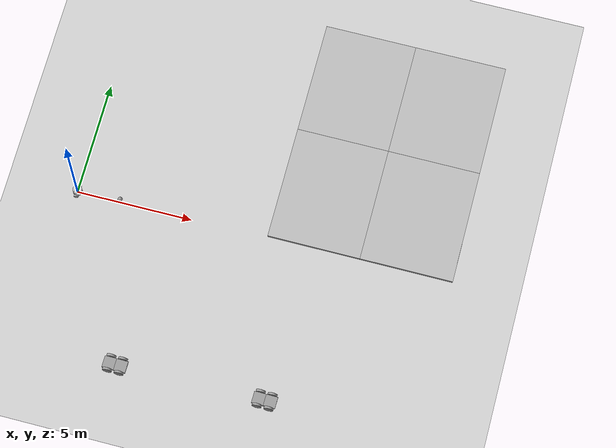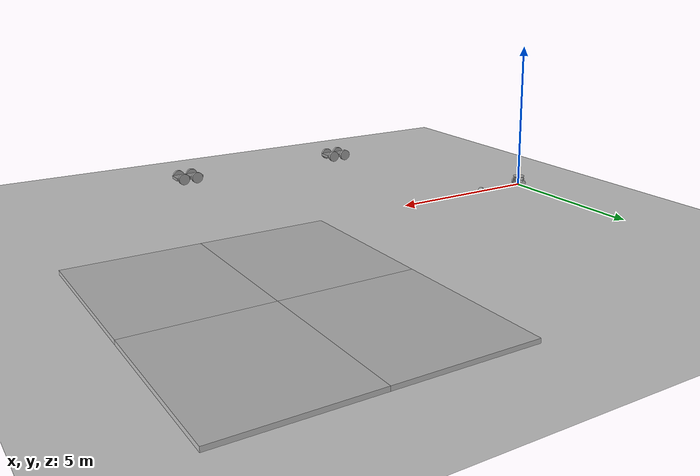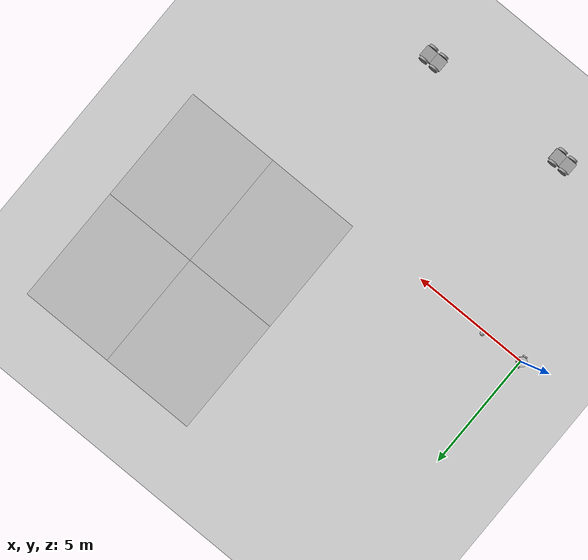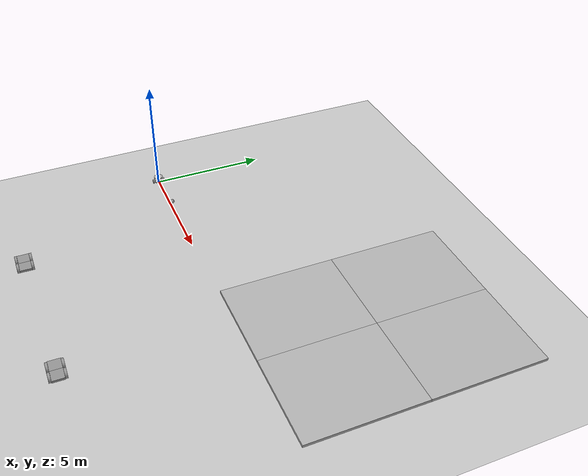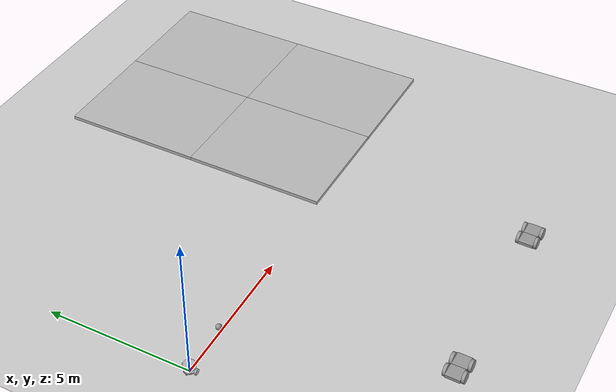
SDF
<sdf version="1.6">
 <world name="default">
  <model name="ground_plane">
   <static>1</static>
   <link name="link">
    <collision name="collision">
     <geometry><plane><normal>0 0 1</normal><size>100 100</size></plane></geometry>
     <surface><friction><ode><mu>100</mu><mu2>50</mu2></ode></friction></surface>
    </collision>
    <visual name="visual">
     <cast_shadows>0</cast_shadows>
     <geometry><plane><normal>0 0 1</normal><size>100 100</size></plane></geometry>
     <material>
      <script><uri>file://media/materials/scripts/gazebo.material</uri><name>Gazebo/Grey</name></script>
     </material>
    </visual>
   </link>
  </model>
  <model name="mud_box">
   <static>1</static>
   <link name="link">
    <collision name="collision"><geometry><box><size>8 10 0.2</size></box></geometry></collision>
    <visual name="visual_1">
     <pose>-2 2.5 0 0 -0 0</pose>
     <cast_shadows>0</cast_shadows>
     <geometry><box><size>4 5 0.2</size></box></geometry>
     <material>
      <script>
       <uri>model://mud_box/materials/scripts</uri>
       <uri>model://mud_box/materials/textures</uri>
       <name>vrc/mud</name>
      </script>
     </material>
    </visual>
    <visual name="visual_2">
     <pose>2 2.5 0 0 -0 0</pose>
     <cast_shadows>0</cast_shadows>
     <geometry><box><size>4 5 0.2</size></box></geometry>
     <material>
      <script>
       <uri>model://mud_box/materials/scripts</uri>
       <uri>model://mud_box/materials/textures</uri>
       <name>vrc/mud</name>
      </script>
     </material>
    </visual>
    <visual name="visual_3">
     <pose>2 -2.5 0 0 -0 0</pose>
     <cast_shadows>0</cast_shadows>
     <geometry><box><size>4 5 0.2</size></box></geometry>
     <material>
      <script>
       <uri>model://mud_box/materials/scripts</uri>
       <uri>model://mud_box/materials/textures</uri>
       <name>vrc/mud</name>
      </script>
     </material>
    </visual>
    <visual name="visual_4">
     <pose>-2 -2.5 0 0 -0 0</pose>
     <cast_shadows>0</cast_shadows>
     <geometry><box><size>4 5 0.2</size></box></geometry>
     <material>
      <script>
       <uri>model://mud_box/materials/scripts</uri>
       <uri>model://mud_box/materials/textures</uri>
       <name>vrc/mud</name>
      </script>
     </material>
    </visual>
   </link>
   <pose>12.2965 5.12025 0 0 -0 0</pose>
  </model>
  <model name="lil_robot_clone_0">
   <link name="link_1">
    <inertial>
     <mass>1</mass>
     <inertia>
      <ixx>0.166667</ixx>
      <ixy>0</ixy>
      <ixz>0</ixz>
      <iyy>0.166667</iyy>
      <iyz>0</iyz>
      <izz>0.166667</izz>
     </inertia>
    </inertial>
    <pose>-0.159267 -0.015 -0.014999 0 -0 0</pose>
    <visual name="visual">
     <geometry><box><size>0.5 0.5 0.1</size></box></geometry>
     <material>
      <lighting>1</lighting>
      <script><uri>file://media/materials/scripts/gazebo.material</uri><name>Gazebo/Grey</name></script>
      <shader type="vertex"><normal_map>__default__</normal_map></shader>
      <ambient>0.3 0.3 0.3 1</ambient>
      <diffuse>0.7 0.7 0.7 1</diffuse>
      <specular>0.01 0.01 0.01 1</specular>
      <emissive>0 0 0 1</emissive>
     </material>
    </visual>
    <collision name="collision">
     <geometry><box><size>0.5 0.5 0.1</size></box></geometry>
     <surface>
      <friction>
       <ode><mu>1</mu><mu2>1</mu2><fdir1>0 0 0</fdir1><slip1>0</slip1><slip2>0</slip2></ode>
       <torsional>
        <coefficient>1</coefficient>
        <patch_radius>0</patch_radius>
        <surface_radius>0</surface_radius>
        <use_patch_radius>1</use_patch_radius>
        <ode><slip>0</slip></ode>
       </torsional>
      </friction>
      <bounce><restitution_coefficient>0</restitution_coefficient><threshold>1e+06</threshold></bounce>
      <contact>
       <collide_without_contact>0</collide_without_contact>
       <collide_without_contact_bitmask>1</collide_without_contact_bitmask>
       <collide_bitmask>1</collide_bitmask>
       <ode>
        <soft_cfm>0</soft_cfm>
        <soft_erp>0.2</soft_erp>
        <kp>1e+13</kp>
        <kd>1</kd>
        <max_vel>0.01</max_vel>
        <min_depth>0</min_depth>
       </ode>
       <bullet>
        <split_impulse>1</split_impulse>
        <split_impulse_penetration_threshold>-0.01</split_impulse_penetration_threshold>
        <soft_cfm>0</soft_cfm>
        <soft_erp>0.2</soft_erp>
        <kp>1e+13</kp>
        <kd>1</kd>
       </bullet>
      </contact>
     </surface>
    </collision>
   </link>
   <link name="link_1_clone">
    <inertial>
     <mass>1</mass>
     <inertia>
      <ixx>0.166667</ixx>
      <ixy>0</ixy>
      <ixz>0</ixz>
      <iyy>0.166667</iyy>
      <iyz>0</iyz>
      <izz>0.166667</izz>
     </inertia>
    </inertial>
    <pose>0.340733 -0.015 -0.014999 0 -0 0</pose>
    <visual name="visual">
     <geometry><box><size>0.5 0.5 0.1</size></box></geometry>
     <material>
      <lighting>1</lighting>
      <script><uri>file://media/materials/scripts/gazebo.material</uri><name>Gazebo/Grey</name></script>
      <shader type="vertex"><normal_map>__default__</normal_map></shader>
      <ambient>0.3 0.3 0.3 1</ambient>
      <diffuse>0.7 0.7 0.7 1</diffuse>
      <specular>0.01 0.01 0.01 1</specular>
      <emissive>0 0 0 1</emissive>
     </material>
    </visual>
    <collision name="collision">
     <geometry><box><size>0.5 0.5 0.1</size></box></geometry>
     <surface>
      <friction>
       <ode><mu>1</mu><mu2>1</mu2><fdir1>0 0 0</fdir1><slip1>0</slip1><slip2>0</slip2></ode>
       <torsional>
        <coefficient>1</coefficient>
        <patch_radius>0</patch_radius>
        <surface_radius>0</surface_radius>
        <use_patch_radius>1</use_patch_radius>
        <ode><slip>0</slip></ode>
       </torsional>
      </friction>
      <bounce><restitution_coefficient>0</restitution_coefficient><threshold>1e+06</threshold></bounce>
      <contact>
       <collide_without_contact>0</collide_without_contact>
       <collide_without_contact_bitmask>1</collide_without_contact_bitmask>
       <collide_bitmask>1</collide_bitmask>
       <ode>
        <soft_cfm>0</soft_cfm>
        <soft_erp>0.2</soft_erp>
        <kp>1e+13</kp>
        <kd>1</kd>
        <max_vel>0.01</max_vel>
        <min_depth>0</min_depth>
       </ode>
       <bullet>
        <split_impulse>1</split_impulse>
        <split_impulse_penetration_threshold>-0.01</split_impulse_penetration_threshold>
        <soft_cfm>0</soft_cfm>
        <soft_erp>0.2</soft_erp>
        <kp>1e+13</kp>
        <kd>1</kd>
       </bullet>
      </contact>
     </surface>
    </collision>
   </link>
   <link name="link_2_clone">
    <inertial>
     <mass>1</mass>
     <inertia><ixx>0.145833</ixx><ixy>0</ixy><ixz>0</ixz><iyy>0.145833</iyy><iyz>0</iyz><izz>0.125</izz></inertia>
    </inertial>
    <pose>0.340733 0.285019 -0.014999 1.5707 -0 0</pose>
    <visual name="visual">
     <geometry><cylinder><radius>0.2</radius><length>0.1</length></cylinder></geometry>
     <material>
      <lighting>1</lighting>
      <script><uri>file://media/materials/scripts/gazebo.material</uri><name>Gazebo/Grey</name></script>
      <shader type="vertex"><normal_map>__default__</normal_map></shader>
      <ambient>0.3 0.3 0.3 1</ambient>
      <diffuse>0.7 0.7 0.7 1</diffuse>
      <specular>0.01 0.01 0.01 1</specular>
      <emissive>0 0 0 1</emissive>
     </material>
    </visual>
    <collision name="collision">
     <geometry><cylinder><radius>0.2</radius><length>0.1</length></cylinder></geometry>
     <surface>
      <friction>
       <ode><mu>1</mu><mu2>1</mu2><fdir1>0 0 0</fdir1><slip1>0</slip1><slip2>0</slip2></ode>
       <torsional>
        <coefficient>1</coefficient>
        <patch_radius>0</patch_radius>
        <surface_radius>0</surface_radius>
        <use_patch_radius>1</use_patch_radius>
        <ode><slip>0</slip></ode>
       </torsional>
      </friction>
      <bounce><restitution_coefficient>0</restitution_coefficient><threshold>1e+06</threshold></bounce>
      <contact>
       <collide_without_contact>0</collide_without_contact>
       <collide_without_contact_bitmask>1</collide_without_contact_bitmask>
       <collide_bitmask>1</collide_bitmask>
       <ode>
        <soft_cfm>0</soft_cfm>
        <soft_erp>0.2</soft_erp>
        <kp>1e+13</kp>
        <kd>1</kd>
        <max_vel>0.01</max_vel>
        <min_depth>0</min_depth>
       </ode>
       <bullet>
        <split_impulse>1</split_impulse>
        <split_impulse_penetration_threshold>-0.01</split_impulse_penetration_threshold>
        <soft_cfm>0</soft_cfm>
        <soft_erp>0.2</soft_erp>
        <kp>1e+13</kp>
        <kd>1</kd>
       </bullet>
      </contact>
     </surface>
    </collision>
   </link>
   <link name="link_2_clone_clone">
    <inertial>
     <mass>1</mass>
     <inertia><ixx>0.145833</ixx><ixy>0</ixy><ixz>0</ixz><iyy>0.145833</iyy><iyz>0</iyz><izz>0.125</izz></inertia>
    </inertial>
    <pose>0.340733 -0.315019 -0.014999 1.5707 -0 0</pose>
    <visual name="visual">
     <geometry><cylinder><radius>0.2</radius><length>0.1</length></cylinder></geometry>
     <material>
      <lighting>1</lighting>
      <script><uri>file://media/materials/scripts/gazebo.material</uri><name>Gazebo/Grey</name></script>
      <shader type="vertex"><normal_map>__default__</normal_map></shader>
      <ambient>0.3 0.3 0.3 1</ambient>
      <diffuse>0.7 0.7 0.7 1</diffuse>
      <specular>0.01 0.01 0.01 1</specular>
      <emissive>0 0 0 1</emissive>
     </material>
    </visual>
    <collision name="collision">
     <geometry><cylinder><radius>0.2</radius><length>0.1</length></cylinder></geometry>
     <surface>
      <friction>
       <ode><mu>1</mu><mu2>1</mu2><fdir1>0 0 0</fdir1><slip1>0</slip1><slip2>0</slip2></ode>
       <torsional>
        <coefficient>1</coefficient>
        <patch_radius>0</patch_radius>
        <surface_radius>0</surface_radius>
        <use_patch_radius>1</use_patch_radius>
        <ode><slip>0</slip></ode>
       </torsional>
      </friction>
      <bounce><restitution_coefficient>0</restitution_coefficient><threshold>1e+06</threshold></bounce>
      <contact>
       <collide_without_contact>0</collide_without_contact>
       <collide_without_contact_bitmask>1</collide_without_contact_bitmask>
       <collide_bitmask>1</collide_bitmask>
       <ode>
        <soft_cfm>0</soft_cfm>
        <soft_erp>0.2</soft_erp>
        <kp>1e+13</kp>
        <kd>1</kd>
        <max_vel>0.01</max_vel>
        <min_depth>0</min_depth>
       </ode>
       <bullet>
        <split_impulse>1</split_impulse>
        <split_impulse_penetration_threshold>-0.01</split_impulse_penetration_threshold>
        <soft_cfm>0</soft_cfm>
        <soft_erp>0.2</soft_erp>
        <kp>1e+13</kp>
        <kd>1</kd>
       </bullet>
      </contact>
     </surface>
    </collision>
   </link>
   <link name="link_2_clone_clone_0">
    <inertial>
     <mass>1</mass>
     <inertia><ixx>0.145833</ixx><ixy>0</ixy><ixz>0</ixz><iyy>0.145833</iyy><iyz>0</iyz><izz>0.125</izz></inertia>
    </inertial>
    <pose>-0.159267 0.285019 -0.014999 1.5707 -0 0</pose>
    <visual name="visual">
     <geometry><cylinder><radius>0.2</radius><length>0.1</length></cylinder></geometry>
     <material>
      <lighting>1</lighting>
      <script><uri>file://media/materials/scripts/gazebo.material</uri><name>Gazebo/Grey</name></script>
      <shader type="vertex"><normal_map>__default__</normal_map></shader>
      <ambient>0.3 0.3 0.3 1</ambient>
      <diffuse>0.7 0.7 0.7 1</diffuse>
      <specular>0.01 0.01 0.01 1</specular>
      <emissive>0 0 0 1</emissive>
     </material>
    </visual>
    <collision name="collision">
     <geometry><cylinder><radius>0.2</radius><length>0.1</length></cylinder></geometry>
     <surface>
      <friction>
       <ode><mu>1</mu><mu2>1</mu2><fdir1>0 0 0</fdir1><slip1>0</slip1><slip2>0</slip2></ode>
       <torsional>
        <coefficient>1</coefficient>
        <patch_radius>0</patch_radius>
        <surface_radius>0</surface_radius>
        <use_patch_radius>1</use_patch_radius>
        <ode><slip>0</slip></ode>
       </torsional>
      </friction>
      <bounce><restitution_coefficient>0</restitution_coefficient><threshold>1e+06</threshold></bounce>
      <contact>
       <collide_without_contact>0</collide_without_contact>
       <collide_without_contact_bitmask>1</collide_without_contact_bitmask>
       <collide_bitmask>1</collide_bitmask>
       <ode>
        <soft_cfm>0</soft_cfm>
        <soft_erp>0.2</soft_erp>
        <kp>1e+13</kp>
        <kd>1</kd>
        <max_vel>0.01</max_vel>
        <min_depth>0</min_depth>
       </ode>
       <bullet>
        <split_impulse>1</split_impulse>
        <split_impulse_penetration_threshold>-0.01</split_impulse_penetration_threshold>
        <soft_cfm>0</soft_cfm>
        <soft_erp>0.2</soft_erp>
        <kp>1e+13</kp>
        <kd>1</kd>
       </bullet>
      </contact>
     </surface>
    </collision>
   </link>
   <link name="link_2_clone_clone_1">
    <inertial>
     <mass>1</mass>
     <inertia><ixx>0.145833</ixx><ixy>0</ixy><ixz>0</ixz><iyy>0.145833</iyy><iyz>0</iyz><izz>0.125</izz></inertia>
    </inertial>
    <pose>-0.159267 -0.315019 -0.014999 1.5707 -0 0</pose>
    <visual name="visual">
     <geometry><cylinder><radius>0.2</radius><length>0.1</length></cylinder></geometry>
     <material>
      <lighting>1</lighting>
      <script><uri>file://media/materials/scripts/gazebo.material</uri><name>Gazebo/Grey</name></script>
      <shader type="vertex"><normal_map>__default__</normal_map></shader>
      <ambient>0.3 0.3 0.3 1</ambient>
      <diffuse>0.7 0.7 0.7 1</diffuse>
      <specular>0.01 0.01 0.01 1</specular>
      <emissive>0 0 0 1</emissive>
     </material>
    </visual>
    <collision name="collision">
     <geometry><cylinder><radius>0.2</radius><length>0.1</length></cylinder></geometry>
     <surface>
      <friction>
       <ode><mu>1</mu><mu2>1</mu2><fdir1>0 0 0</fdir1><slip1>0</slip1><slip2>0</slip2></ode>
       <torsional>
        <coefficient>1</coefficient>
        <patch_radius>0</patch_radius>
        <surface_radius>0</surface_radius>
        <use_patch_radius>1</use_patch_radius>
        <ode><slip>0</slip></ode>
       </torsional>
      </friction>
      <bounce><restitution_coefficient>0</restitution_coefficient><threshold>1e+06</threshold></bounce>
      <contact>
       <collide_without_contact>0</collide_without_contact>
       <collide_without_contact_bitmask>1</collide_without_contact_bitmask>
       <collide_bitmask>1</collide_bitmask>
       <ode>
        <soft_cfm>0</soft_cfm>
        <soft_erp>0.2</soft_erp>
        <kp>1e+13</kp>
        <kd>1</kd>
        <max_vel>0.01</max_vel>
        <min_depth>0</min_depth>
       </ode>
       <bullet>
        <split_impulse>1</split_impulse>
        <split_impulse_penetration_threshold>-0.01</split_impulse_penetration_threshold>
        <soft_cfm>0</soft_cfm>
        <soft_erp>0.2</soft_erp>
        <kp>1e+13</kp>
        <kd>1</kd>
       </bullet>
      </contact>
     </surface>
    </collision>
   </link>
   <joint name="link_1_JOINT_1" type="fixed">
    <parent>link_1</parent>
    <child>link_1_clone</child>
    <physics>
     <ode><limit><cfm>0</cfm><erp>0.2</erp></limit><suspension><cfm>0</cfm><erp>0.2</erp></suspension></ode>
    </physics>
   </joint>
   <joint name="link_1_JOINT_3" type="revolute">
    <parent>link_1</parent>
    <child>link_2_clone_clone_0</child>
    <axis>
     <xyz>0 0 1</xyz>
     <use_parent_model_frame>0</use_parent_model_frame>
     <limit>
      <lower>-1.79769e+308</lower>
      <upper>1.79769e+308</upper>
      <effort>-1</effort>
      <velocity>-1</velocity>
     </limit>
     <dynamics>
      <spring_reference>0</spring_reference>
      <spring_stiffness>0</spring_stiffness>
      <damping>0</damping>
     </dynamics>
    </axis>
    <physics>
     <ode><limit><cfm>0</cfm><erp>0.2</erp></limit><suspension><cfm>0</cfm><erp>0.2</erp></suspension></ode>
    </physics>
   </joint>
   <joint name="link_1_JOINT_4" type="revolute">
    <parent>link_1</parent>
    <child>link_2_clone_clone_1</child>
    <axis>
     <xyz>0 0 1</xyz>
     <use_parent_model_frame>0</use_parent_model_frame>
     <limit>
      <lower>-1.79769e+308</lower>
      <upper>1.79769e+308</upper>
      <effort>-1</effort>
      <velocity>-1</velocity>
     </limit>
     <dynamics>
      <spring_reference>0</spring_reference>
      <spring_stiffness>0</spring_stiffness>
      <damping>0</damping>
     </dynamics>
    </axis>
    <physics>
     <ode><limit><cfm>0</cfm><erp>0.2</erp></limit><suspension><cfm>0</cfm><erp>0.2</erp></suspension></ode>
    </physics>
   </joint>
   <joint name="link_1_clone_JOINT_4" type="revolute">
    <parent>link_1_clone</parent>
    <child>link_2_clone</child>
    <axis>
     <xyz>0 0 1</xyz>
     <use_parent_model_frame>0</use_parent_model_frame>
     <limit>
      <lower>-1.79769e+308</lower>
      <upper>1.79769e+308</upper>
      <effort>-1</effort>
      <velocity>-1</velocity>
     </limit>
     <dynamics>
      <spring_reference>0</spring_reference>
      <spring_stiffness>0</spring_stiffness>
      <damping>0</damping>
      <friction>0</friction>
     </dynamics>
    </axis>
    <physics>
     <ode><limit><cfm>0</cfm><erp>0.2</erp></limit><suspension><cfm>0</cfm><erp>0.2</erp></suspension></ode>
    </physics>
   </joint>
   <joint name="link_1_clone_JOINT_5" type="revolute">
    <parent>link_1_clone</parent>
    <child>link_2_clone_clone</child>
    <axis>
     <xyz>0 0 1</xyz>
     <use_parent_model_frame>0</use_parent_model_frame>
     <limit>
      <lower>-1.79769e+308</lower>
      <upper>1.79769e+308</upper>
      <effort>-1</effort>
      <velocity>-1</velocity>
     </limit>
     <dynamics>
      <spring_reference>0</spring_reference>
      <spring_stiffness>0</spring_stiffness>
      <damping>0</damping>
      <friction>0</friction>
     </dynamics>
    </axis>
    <physics>
     <ode><limit><cfm>0</cfm><erp>0.2</erp></limit><suspension><cfm>0</cfm><erp>0.2</erp></suspension></ode>
    </physics>
   </joint>
   <static>0</static>
   <pose>3.60171 -6.91282 0.214995 -3e-06 7e-06 -0.017179</pose>
  </model>
  <model name="lil_robot_clone_1">
   <link name="link_1">
    <inertial>
     <mass>1</mass>
     <inertia>
      <ixx>0.166667</ixx>
      <ixy>0</ixy>
      <ixz>0</ixz>
      <iyy>0.166667</iyy>
      <iyz>0</iyz>
      <izz>0.166667</izz>
     </inertia>
    </inertial>
    <pose>-0.159267 -0.015 -0.014999 0 -0 0</pose>
    <visual name="visual">
     <geometry><box><size>0.5 0.5 0.1</size></box></geometry>
     <material>
      <lighting>1</lighting>
      <script><uri>file://media/materials/scripts/gazebo.material</uri><name>Gazebo/Grey</name></script>
      <shader type="vertex"><normal_map>__default__</normal_map></shader>
      <ambient>0.3 0.3 0.3 1</ambient>
      <diffuse>0.7 0.7 0.7 1</diffuse>
      <specular>0.01 0.01 0.01 1</specular>
      <emissive>0 0 0 1</emissive>
     </material>
    </visual>
    <collision name="collision">
     <geometry><box><size>0.5 0.5 0.1</size></box></geometry>
     <surface>
      <friction>
       <ode><mu>1</mu><mu2>1</mu2><fdir1>0 0 0</fdir1><slip1>0</slip1><slip2>0</slip2></ode>
       <torsional>
        <coefficient>1</coefficient>
        <patch_radius>0</patch_radius>
        <surface_radius>0</surface_radius>
        <use_patch_radius>1</use_patch_radius>
        <ode><slip>0</slip></ode>
       </torsional>
      </friction>
      <bounce><restitution_coefficient>0</restitution_coefficient><threshold>1e+06</threshold></bounce>
      <contact>
       <collide_without_contact>0</collide_without_contact>
       <collide_without_contact_bitmask>1</collide_without_contact_bitmask>
       <collide_bitmask>1</collide_bitmask>
       <ode>
        <soft_cfm>0</soft_cfm>
        <soft_erp>0.2</soft_erp>
        <kp>1e+13</kp>
        <kd>1</kd>
        <max_vel>0.01</max_vel>
        <min_depth>0</min_depth>
       </ode>
       <bullet>
        <split_impulse>1</split_impulse>
        <split_impulse_penetration_threshold>-0.01</split_impulse_penetration_threshold>
        <soft_cfm>0</soft_cfm>
        <soft_erp>0.2</soft_erp>
        <kp>1e+13</kp>
        <kd>1</kd>
       </bullet>
      </contact>
     </surface>
    </collision>
   </link>
   <link name="link_1_clone">
    <inertial>
     <mass>1</mass>
     <inertia>
      <ixx>0.166667</ixx>
      <ixy>0</ixy>
      <ixz>0</ixz>
      <iyy>0.166667</iyy>
      <iyz>0</iyz>
      <izz>0.166667</izz>
     </inertia>
    </inertial>
    <pose>0.340733 -0.015 -0.014999 0 -0 0</pose>
    <visual name="visual">
     <geometry><box><size>0.5 0.5 0.1</size></box></geometry>
     <material>
      <lighting>1</lighting>
      <script><uri>file://media/materials/scripts/gazebo.material</uri><name>Gazebo/Grey</name></script>
      <shader type="vertex"><normal_map>__default__</normal_map></shader>
      <ambient>0.3 0.3 0.3 1</ambient>
      <diffuse>0.7 0.7 0.7 1</diffuse>
      <specular>0.01 0.01 0.01 1</specular>
      <emissive>0 0 0 1</emissive>
     </material>
    </visual>
    <collision name="collision">
     <geometry><box><size>0.5 0.5 0.1</size></box></geometry>
     <surface>
      <friction>
       <ode><mu>1</mu><mu2>1</mu2><fdir1>0 0 0</fdir1><slip1>0</slip1><slip2>0</slip2></ode>
       <torsional>
        <coefficient>1</coefficient>
        <patch_radius>0</patch_radius>
        <surface_radius>0</surface_radius>
        <use_patch_radius>1</use_patch_radius>
        <ode><slip>0</slip></ode>
       </torsional>
      </friction>
      <bounce><restitution_coefficient>0</restitution_coefficient><threshold>1e+06</threshold></bounce>
      <contact>
       <collide_without_contact>0</collide_without_contact>
       <collide_without_contact_bitmask>1</collide_without_contact_bitmask>
       <collide_bitmask>1</collide_bitmask>
       <ode>
        <soft_cfm>0</soft_cfm>
        <soft_erp>0.2</soft_erp>
        <kp>1e+13</kp>
        <kd>1</kd>
        <max_vel>0.01</max_vel>
        <min_depth>0</min_depth>
       </ode>
       <bullet>
        <split_impulse>1</split_impulse>
        <split_impulse_penetration_threshold>-0.01</split_impulse_penetration_threshold>
        <soft_cfm>0</soft_cfm>
        <soft_erp>0.2</soft_erp>
        <kp>1e+13</kp>
        <kd>1</kd>
       </bullet>
      </contact>
     </surface>
    </collision>
   </link>
   <link name="link_2_clone">
    <inertial>
     <mass>1</mass>
     <inertia><ixx>0.145833</ixx><ixy>0</ixy><ixz>0</ixz><iyy>0.145833</iyy><iyz>0</iyz><izz>0.125</izz></inertia>
    </inertial>
    <pose>0.340733 0.285019 -0.014999 1.5707 -0 0</pose>
    <visual name="visual">
     <geometry><cylinder><radius>0.2</radius><length>0.1</length></cylinder></geometry>
     <material>
      <lighting>1</lighting>
      <script><uri>file://media/materials/scripts/gazebo.material</uri><name>Gazebo/Grey</name></script>
      <shader type="vertex"><normal_map>__default__</normal_map></shader>
      <ambient>0.3 0.3 0.3 1</ambient>
      <diffuse>0.7 0.7 0.7 1</diffuse>
      <specular>0.01 0.01 0.01 1</specular>
      <emissive>0 0 0 1</emissive>
     </material>
    </visual>
    <collision name="collision">
     <geometry><cylinder><radius>0.2</radius><length>0.1</length></cylinder></geometry>
     <surface>
      <friction>
       <ode><mu>1</mu><mu2>1</mu2><fdir1>0 0 0</fdir1><slip1>0</slip1><slip2>0</slip2></ode>
       <torsional>
        <coefficient>1</coefficient>
        <patch_radius>0</patch_radius>
        <surface_radius>0</surface_radius>
        <use_patch_radius>1</use_patch_radius>
        <ode><slip>0</slip></ode>
       </torsional>
      </friction>
      <bounce><restitution_coefficient>0</restitution_coefficient><threshold>1e+06</threshold></bounce>
      <contact>
       <collide_without_contact>0</collide_without_contact>
       <collide_without_contact_bitmask>1</collide_without_contact_bitmask>
       <collide_bitmask>1</collide_bitmask>
       <ode>
        <soft_cfm>0</soft_cfm>
        <soft_erp>0.2</soft_erp>
        <kp>1e+13</kp>
        <kd>1</kd>
        <max_vel>0.01</max_vel>
        <min_depth>0</min_depth>
       </ode>
       <bullet>
        <split_impulse>1</split_impulse>
        <split_impulse_penetration_threshold>-0.01</split_impulse_penetration_threshold>
        <soft_cfm>0</soft_cfm>
        <soft_erp>0.2</soft_erp>
        <kp>1e+13</kp>
        <kd>1</kd>
       </bullet>
      </contact>
     </surface>
    </collision>
   </link>
   <link name="link_2_clone_clone">
    <inertial>
     <mass>1</mass>
     <inertia><ixx>0.145833</ixx><ixy>0</ixy><ixz>0</ixz><iyy>0.145833</iyy><iyz>0</iyz><izz>0.125</izz></inertia>
    </inertial>
    <pose>0.340733 -0.315019 -0.014999 1.5707 -0 0</pose>
    <visual name="visual">
     <geometry><cylinder><radius>0.2</radius><length>0.1</length></cylinder></geometry>
     <material>
      <lighting>1</lighting>
      <script><uri>file://media/materials/scripts/gazebo.material</uri><name>Gazebo/Grey</name></script>
      <shader type="vertex"><normal_map>__default__</normal_map></shader>
      <ambient>0.3 0.3 0.3 1</ambient>
      <diffuse>0.7 0.7 0.7 1</diffuse>
      <specular>0.01 0.01 0.01 1</specular>
      <emissive>0 0 0 1</emissive>
     </material>
    </visual>
    <collision name="collision">
     <geometry><cylinder><radius>0.2</radius><length>0.1</length></cylinder></geometry>
     <surface>
      <friction>
       <ode><mu>1</mu><mu2>1</mu2><fdir1>0 0 0</fdir1><slip1>0</slip1><slip2>0</slip2></ode>
       <torsional>
        <coefficient>1</coefficient>
        <patch_radius>0</patch_radius>
        <surface_radius>0</surface_radius>
        <use_patch_radius>1</use_patch_radius>
        <ode><slip>0</slip></ode>
       </torsional>
      </friction>
      <bounce><restitution_coefficient>0</restitution_coefficient><threshold>1e+06</threshold></bounce>
      <contact>
       <collide_without_contact>0</collide_without_contact>
       <collide_without_contact_bitmask>1</collide_without_contact_bitmask>
       <collide_bitmask>1</collide_bitmask>
       <ode>
        <soft_cfm>0</soft_cfm>
        <soft_erp>0.2</soft_erp>
        <kp>1e+13</kp>
        <kd>1</kd>
        <max_vel>0.01</max_vel>
        <min_depth>0</min_depth>
       </ode>
       <bullet>
        <split_impulse>1</split_impulse>
        <split_impulse_penetration_threshold>-0.01</split_impulse_penetration_threshold>
        <soft_cfm>0</soft_cfm>
        <soft_erp>0.2</soft_erp>
        <kp>1e+13</kp>
        <kd>1</kd>
       </bullet>
      </contact>
     </surface>
    </collision>
   </link>
   <link name="link_2_clone_clone_0">
    <inertial>
     <mass>1</mass>
     <inertia><ixx>0.145833</ixx><ixy>0</ixy><ixz>0</ixz><iyy>0.145833</iyy><iyz>0</iyz><izz>0.125</izz></inertia>
    </inertial>
    <pose>-0.159267 0.285019 -0.014999 1.5707 -0 0</pose>
    <visual name="visual">
     <geometry><cylinder><radius>0.2</radius><length>0.1</length></cylinder></geometry>
     <material>
      <lighting>1</lighting>
      <script><uri>file://media/materials/scripts/gazebo.material</uri><name>Gazebo/Grey</name></script>
      <shader type="vertex"><normal_map>__default__</normal_map></shader>
      <ambient>0.3 0.3 0.3 1</ambient>
      <diffuse>0.7 0.7 0.7 1</diffuse>
      <specular>0.01 0.01 0.01 1</specular>
      <emissive>0 0 0 1</emissive>
     </material>
    </visual>
    <collision name="collision">
     <geometry><cylinder><radius>0.2</radius><length>0.1</length></cylinder></geometry>
     <surface>
      <friction>
       <ode><mu>1</mu><mu2>1</mu2><fdir1>0 0 0</fdir1><slip1>0</slip1><slip2>0</slip2></ode>
       <torsional>
        <coefficient>1</coefficient>
        <patch_radius>0</patch_radius>
        <surface_radius>0</surface_radius>
        <use_patch_radius>1</use_patch_radius>
        <ode><slip>0</slip></ode>
       </torsional>
      </friction>
      <bounce><restitution_coefficient>0</restitution_coefficient><threshold>1e+06</threshold></bounce>
      <contact>
       <collide_without_contact>0</collide_without_contact>
       <collide_without_contact_bitmask>1</collide_without_contact_bitmask>
       <collide_bitmask>1</collide_bitmask>
       <ode>
        <soft_cfm>0</soft_cfm>
        <soft_erp>0.2</soft_erp>
        <kp>1e+13</kp>
        <kd>1</kd>
        <max_vel>0.01</max_vel>
        <min_depth>0</min_depth>
       </ode>
       <bullet>
        <split_impulse>1</split_impulse>
        <split_impulse_penetration_threshold>-0.01</split_impulse_penetration_threshold>
        <soft_cfm>0</soft_cfm>
        <soft_erp>0.2</soft_erp>
        <kp>1e+13</kp>
        <kd>1</kd>
       </bullet>
      </contact>
     </surface>
    </collision>
   </link>
   <link name="link_2_clone_clone_1">
    <inertial>
     <mass>1</mass>
     <inertia><ixx>0.145833</ixx><ixy>0</ixy><ixz>0</ixz><iyy>0.145833</iyy><iyz>0</iyz><izz>0.125</izz></inertia>
    </inertial>
    <pose>-0.159267 -0.315019 -0.014999 1.5707 -0 0</pose>
    <visual name="visual">
     <geometry><cylinder><radius>0.2</radius><length>0.1</length></cylinder></geometry>
     <material>
      <lighting>1</lighting>
      <script><uri>file://media/materials/scripts/gazebo.material</uri><name>Gazebo/Grey</name></script>
      <shader type="vertex"><normal_map>__default__</normal_map></shader>
      <ambient>0.3 0.3 0.3 1</ambient>
      <diffuse>0.7 0.7 0.7 1</diffuse>
      <specular>0.01 0.01 0.01 1</specular>
      <emissive>0 0 0 1</emissive>
     </material>
    </visual>
    <collision name="collision">
     <geometry><cylinder><radius>0.2</radius><length>0.1</length></cylinder></geometry>
     <surface>
      <friction>
       <ode><mu>1</mu><mu2>1</mu2><fdir1>0 0 0</fdir1><slip1>0</slip1><slip2>0</slip2></ode>
       <torsional>
        <coefficient>1</coefficient>
        <patch_radius>0</patch_radius>
        <surface_radius>0</surface_radius>
        <use_patch_radius>1</use_patch_radius>
        <ode><slip>0</slip></ode>
       </torsional>
      </friction>
      <bounce><restitution_coefficient>0</restitution_coefficient><threshold>1e+06</threshold></bounce>
      <contact>
       <collide_without_contact>0</collide_without_contact>
       <collide_without_contact_bitmask>1</collide_without_contact_bitmask>
       <collide_bitmask>1</collide_bitmask>
       <ode>
        <soft_cfm>0</soft_cfm>
        <soft_erp>0.2</soft_erp>
        <kp>1e+13</kp>
        <kd>1</kd>
        <max_vel>0.01</max_vel>
        <min_depth>0</min_depth>
       </ode>
       <bullet>
        <split_impulse>1</split_impulse>
        <split_impulse_penetration_threshold>-0.01</split_impulse_penetration_threshold>
        <soft_cfm>0</soft_cfm>
        <soft_erp>0.2</soft_erp>
        <kp>1e+13</kp>
        <kd>1</kd>
       </bullet>
      </contact>
     </surface>
    </collision>
   </link>
   <joint name="link_1_JOINT_1" type="fixed">
    <parent>link_1</parent>
    <child>link_1_clone</child>
    <physics>
     <ode><limit><cfm>0</cfm><erp>0.2</erp></limit><suspension><cfm>0</cfm><erp>0.2</erp></suspension></ode>
    </physics>
   </joint>
   <joint name="link_1_JOINT_3" type="revolute">
    <parent>link_1</parent>
    <child>link_2_clone_clone_0</child>
    <axis>
     <xyz>0 0 1</xyz>
     <use_parent_model_frame>0</use_parent_model_frame>
     <limit>
      <lower>-1.79769e+308</lower>
      <upper>1.79769e+308</upper>
      <effort>-1</effort>
      <velocity>-1</velocity>
     </limit>
     <dynamics>
      <spring_reference>0</spring_reference>
      <spring_stiffness>0</spring_stiffness>
      <damping>0</damping>
     </dynamics>
    </axis>
    <physics>
     <ode><limit><cfm>0</cfm><erp>0.2</erp></limit><suspension><cfm>0</cfm><erp>0.2</erp></suspension></ode>
    </physics>
   </joint>
   <joint name="link_1_JOINT_4" type="revolute">
    <parent>link_1</parent>
    <child>link_2_clone_clone_1</child>
    <axis>
     <xyz>0 0 1</xyz>
     <use_parent_model_frame>0</use_parent_model_frame>
     <limit>
      <lower>-1.79769e+308</lower>
      <upper>1.79769e+308</upper>
      <effort>-1</effort>
      <velocity>-1</velocity>
     </limit>
     <dynamics>
      <spring_reference>0</spring_reference>
      <spring_stiffness>0</spring_stiffness>
      <damping>0</damping>
     </dynamics>
    </axis>
    <physics>
     <ode><limit><cfm>0</cfm><erp>0.2</erp></limit><suspension><cfm>0</cfm><erp>0.2</erp></suspension></ode>
    </physics>
   </joint>
   <joint name="link_1_clone_JOINT_4" type="revolute">
    <parent>link_1_clone</parent>
    <child>link_2_clone</child>
    <axis>
     <xyz>0 0 1</xyz>
     <use_parent_model_frame>0</use_parent_model_frame>
     <limit>
      <lower>-1.79769e+308</lower>
      <upper>1.79769e+308</upper>
      <effort>-1</effort>
      <velocity>-1</velocity>
     </limit>
     <dynamics>
      <spring_reference>0</spring_reference>
      <spring_stiffness>0</spring_stiffness>
      <damping>0</damping>
      <friction>0</friction>
     </dynamics>
    </axis>
    <physics>
     <ode><limit><cfm>0</cfm><erp>0.2</erp></limit><suspension><cfm>0</cfm><erp>0.2</erp></suspension></ode>
    </physics>
   </joint>
   <joint name="link_1_clone_JOINT_5" type="revolute">
    <parent>link_1_clone</parent>
    <child>link_2_clone_clone</child>
    <axis>
     <xyz>0 0 1</xyz>
     <use_parent_model_frame>0</use_parent_model_frame>
     <limit>
      <lower>-1.79769e+308</lower>
      <upper>1.79769e+308</upper>
      <effort>-1</effort>
      <velocity>-1</velocity>
     </limit>
     <dynamics>
      <spring_reference>0</spring_reference>
      <spring_stiffness>0</spring_stiffness>
      <damping>0</damping>
      <friction>0</friction>
     </dynamics>
    </axis>
    <physics>
     <ode><limit><cfm>0</cfm><erp>0.2</erp></limit><suspension><cfm>0</cfm><erp>0.2</erp></suspension></ode>
    </physics>
   </joint>
   <static>0</static>
   <pose>9.94005 -6.80277 0.215 4e-06 -7e-06 -0.016869</pose>
  </model>
  <model name="my_robot">
   <link name="robot_footprint">
    <inertial>
     <pose>0.002237 0 0.001316 0 -0 0</pose>
     <mass>15.2</mass>
     <inertia>
      <ixx>0.102476</ixx>
      <ixy>0</ixy>
      <ixz>-0.00335526</ixz>
      <iyy>0.10818</iyy>
      <iyz>0</iyz>
      <izz>0.105706</izz>
     </inertia>
    </inertial>
    <collision name="robot_footprint_fixed_joint_lump__collision_collision">
     <geometry><cylinder><length>0.05</length><radius>0.2</radius></cylinder></geometry>
    </collision>
    <collision name="robot_footprint_fixed_joint_lump__rod1_collision_1">
     <pose>0.12 0.12 0.125 0 -0 0</pose>
     <geometry><cylinder><length>0.2</length><radius>0.01</radius></cylinder></geometry>
    </collision>
    <collision name="robot_footprint_fixed_joint_lump__rod2_collision_2">
     <pose>-0.12 0.12 0.125 0 -0 0</pose>
     <geometry><cylinder><length>0.2</length><radius>0.01</radius></cylinder></geometry>
    </collision>
    <collision name="robot_footprint_fixed_joint_lump__rod3_collision_3">
     <pose>0.12 -0.12 0.125 0 -0 0</pose>
     <geometry><cylinder><length>0.2</length><radius>0.01</radius></cylinder></geometry>
    </collision>
    <collision name="robot_footprint_fixed_joint_lump__rod4_collision_4">
     <pose>-0.12 -0.12 0.125 0 -0 0</pose>
     <geometry><cylinder><length>0.2</length><radius>0.01</radius></cylinder></geometry>
    </collision>
    <collision name="robot_footprint_fixed_joint_lump__second_layer_collision_collision_5">
     <pose>0 0 0.11 0 -0 0</pose>
     <geometry><cylinder><length>0.01</length><radius>0.2</radius></cylinder></geometry>
    </collision>
    <collision name="robot_footprint_fixed_joint_lump__top_layer_collision_collision_6">
     <pose>0 0 0.21 0 -0 0</pose>
     <geometry><cylinder><length>0.01</length><radius>0.2</radius></cylinder></geometry>
    </collision>
    <collision name="robot_footprint_fixed_joint_lump__back_caster_collision_collision_7">
     <pose>-0.15 0 -0.05 0 -0 0</pose>
     <geometry><sphere><radius>0.0499</radius></sphere></geometry>
    </collision>
    <collision name="robot_footprint_fixed_joint_lump__rod1_collision_8">
     <pose>0.12 0.12 0.07 0 -0 0</pose>
     <geometry><cylinder><length>0.1</length><radius>0.01</radius></cylinder></geometry>
    </collision>
    <collision name="robot_footprint_fixed_joint_lump__front_caster_collision_collision_9">
     <pose>0.15 0 -0.05 0 -0 0</pose>
     <geometry><sphere><radius>0.0499</radius></sphere></geometry>
    </collision>
    <collision name="robot_footprint_fixed_joint_lump__camara_collisoin_collision_10">
     <pose>0.17 0 0.05 0 -0 0</pose>
     <geometry><box><size>0.05 0.05 0.05</size></box></geometry>
    </collision>
    <collision name="robot_footprint_fixed_joint_lump__hokuyo_collisoin_collision_11">
     <pose>0.17 0 0.15 0 -0 0</pose>
     <geometry><box><size>0.1 0.1 0.1</size></box></geometry>
    </collision>
    <visual name="robot_footprint_fixed_joint_lump__chassis_visual_visual">
     <geometry><cylinder><length>0.05</length><radius>0.2</radius></cylinder></geometry>
    </visual>
    <visual name="robot_footprint_fixed_joint_lump__rod1_visual_1">
     <pose>0.12 0.12 0.125 0 -0 0</pose>
     <geometry><cylinder><length>0.2</length><radius>0.01</radius></cylinder></geometry>
    </visual>
    <visual name="robot_footprint_fixed_joint_lump__rod2_visual_2">
     <pose>-0.12 0.12 0.125 0 -0 0</pose>
     <geometry><cylinder><length>0.2</length><radius>0.01</radius></cylinder></geometry>
    </visual>
    <visual name="robot_footprint_fixed_joint_lump__rod3_visual_3">
     <pose>0.12 -0.12 0.125 0 -0 0</pose>
     <geometry><cylinder><length>0.2</length><radius>0.01</radius></cylinder></geometry>
    </visual>
    <visual name="robot_footprint_fixed_joint_lump__rod4_visual_4">
     <pose>-0.12 -0.12 0.125 0 -0 0</pose>
     <geometry><cylinder><length>0.2</length><radius>0.01</radius></cylinder></geometry>
    </visual>
    <visual name="robot_footprint_fixed_joint_lump__second_layer_visual_visual_5">
     <pose>0 0 0.11 0 -0 0</pose>
     <geometry><cylinder><length>0.01</length><radius>0.2</radius></cylinder></geometry>
    </visual>
    <visual name="robot_footprint_fixed_joint_lump__top_layer_visual_visual_6">
     <pose>0 0 0.22 0 -0 0</pose>
     <geometry><cylinder><length>0.01</length><radius>0.2</radius></cylinder></geometry>
    </visual>
    <visual name="robot_footprint_fixed_joint_lump__rod1_visual_7">
     <pose>0.12 0.12 0.07 0 -0 0</pose>
     <geometry><cylinder><length>0.1</length><radius>0.01</radius></cylinder></geometry>
    </visual>
    <visual name="robot_footprint_fixed_joint_lump__back_caster_visual_visual_8">
     <pose>-0.15 0 -0.05 0 -0 0</pose>
     <geometry><sphere><radius>0.05</radius></sphere></geometry>
    </visual>
    <visual name="robot_footprint_fixed_joint_lump__front_caster_visual_visual_9">
     <pose>0.15 0 -0.05 0 -0 0</pose>
     <geometry><sphere><radius>0.05</radius></sphere></geometry>
    </visual>
    <visual name="robot_footprint_fixed_joint_lump__camara_visual_visual_10">
     <pose>0.17 0 0.05 0 -0 0</pose>
     <geometry><box><size>0.05 0.05 0.05</size></box></geometry>
    </visual>
    <visual name="robot_footprint_fixed_joint_lump__hokuyo_visual_visual_11">
     <pose>0.17 0 0.15 0 -0 0</pose>
     <geometry><box><size>0.05 0.05 0.05</size></box></geometry>
     <material><script><uri>__default__</uri><name>__default__</name></script></material>
    </visual>
    <sensor name="camera1" type="camera">
     <update_rate>30</update_rate>
     <camera name="head">
      <horizontal_fov>1.39626</horizontal_fov>
      <image><width>800</width><height>800</height><format>R8G8B8</format></image>
      <clip><near>0.02</near><far>300</far></clip>
     </camera>
     <plugin name="camera_controller" filename="libgazebo_ros_camera.so">
      <alwaysOn>1</alwaysOn>
      <updateRate>0.0</updateRate>
      <cameraName>camera</cameraName>
      <imageTopicName>rgb/image_raw</imageTopicName>
      <cameraInfoTopicName>rgb/camera_info</cameraInfoTopicName>
      <frameName>camera</frameName>
      <hackBaseline>0.07</hackBaseline>
      <distortionK1>0.0</distortionK1>
      <distortionK2>0.0</distortionK2>
      <distortionK3>0.0</distortionK3>
      <distortionT1>0.0</distortionT1>
      <distortionT2>0.0</distortionT2>
      <robotNamespace>/</robotNamespace>
     </plugin>
     <pose>0.17 0 0.05 0 -0 0</pose>
    </sensor>
    <sensor name="head_hokuyo_sensor" type="ray">
     <visualize>0</visualize>
     <update_rate>40</update_rate>
     <ray>
      <scan>
       <horizontal>
        <samples>720</samples>
        <resolution>1</resolution>
        <min_angle>-1.5708</min_angle>
        <max_angle>1.5708</max_angle>
       </horizontal>
       <vertical><samples>1</samples><min_angle>0</min_angle><max_angle>0</max_angle></vertical>
      </scan>
      <range><min>0.1</min><max>30</max><resolution>0.01</resolution></range>
      <noise><type>gaussian</type><mean>0</mean><stddev>0.01</stddev></noise>
     </ray>
     <plugin name="gazebo_ros_head_hokuyo_controller" filename="libgazebo_ros_laser.so">
      <topicName>/scan</topicName>
      <frameName>hokuyo</frameName>
      <robotNamespace>/</robotNamespace>
     </plugin>
     <pose>0.17 0 0.15 0 -0 0</pose>
    </sensor>
   </link>
   <link name="left_wheel">
    <pose>0 0.24 0 0 -0 0</pose>
    <inertial>
     <pose>0 0 0 -0 1.5707 1.5707</pose>
     <mass>5</mass>
     <inertia><ixx>0.1</ixx><ixy>0</ixy><ixz>0</ixz><iyy>0.1</iyy><iyz>0</iyz><izz>0.1</izz></inertia>
    </inertial>
    <collision name="left_wheel_collisoin_collision">
     <pose>0 0 0 3.14159 1.57079 -1.57089</pose>
     <geometry><cylinder><length>0.05</length><radius>0.1</radius></cylinder></geometry>
    </collision>
    <visual name="left_wheel_visual_visual">
     <pose>0 0 0 3.14159 1.57079 -1.57089</pose>
     <geometry><cylinder><length>0.05</length><radius>0.1</radius></cylinder></geometry>
    </visual>
   </link>
   <joint name="left_wheel_hinge" type="revolute">
    <child>left_wheel</child>
    <parent>robot_footprint</parent>
    <axis>
     <xyz>0 1 0</xyz>
     <limit><lower>-1e+16</lower><upper>1e+16</upper></limit>
     <dynamics>
      <damping>1</damping>
      <friction>1</friction>
      <spring_reference>0</spring_reference>
      <spring_stiffness>0</spring_stiffness>
     </dynamics>
     <use_parent_model_frame>1</use_parent_model_frame>
    </axis>
   </joint>
   <link name="right_wheel">
    <pose>0 -0.24 0 0 -0 0</pose>
    <inertial>
     <pose>0 0 0 -0 1.5707 1.5707</pose>
     <mass>5</mass>
     <inertia><ixx>0.1</ixx><ixy>0</ixy><ixz>0</ixz><iyy>0.1</iyy><iyz>0</iyz><izz>0.1</izz></inertia>
    </inertial>
    <collision name="right_wheel_collisoin_collision">
     <pose>0 0 0 3.14159 1.57079 -1.57089</pose>
     <geometry><cylinder><length>0.05</length><radius>0.1</radius></cylinder></geometry>
    </collision>
    <visual name="right_wheel_visual_visual">
     <pose>0 0 0 3.14159 1.57079 -1.57089</pose>
     <geometry><cylinder><length>0.05</length><radius>0.1</radius></cylinder></geometry>
    </visual>
   </link>
   <joint name="right_wheel_hinge" type="revolute">
    <child>right_wheel</child>
    <parent>robot_footprint</parent>
    <axis>
     <xyz>0 1 0</xyz>
     <limit><lower>-1e+16</lower><upper>1e+16</upper></limit>
     <dynamics>
      <damping>1</damping>
      <friction>1</friction>
      <spring_reference>0</spring_reference>
      <spring_stiffness>0</spring_stiffness>
     </dynamics>
     <use_parent_model_frame>1</use_parent_model_frame>
    </axis>
   </joint>
   <static>0</static>
   <plugin name="differential_drive_controller" filename="libgazebo_ros_diff_drive.so">
    <legacyMode>0</legacyMode>
    <alwaysOn>1</alwaysOn>
    <updateRate>10</updateRate>
    <leftJoint>left_wheel_hinge</leftJoint>
    <rightJoint>right_wheel_hinge</rightJoint>
    <wheelSeparation>0.58</wheelSeparation>
    <wheelDiameter>0.2</wheelDiameter>
    <torque>10</torque>
    <commandTopic>cmd_vel</commandTopic>
    <odometryTopic>odom</odometryTopic>
    <odometryFrame>odom</odometryFrame>
    <robotBaseFrame>robot_footprint</robotBaseFrame>
    <publishWheelTF>0</publishWheelTF>
    <publishWheelJointState>0</publishWheelJointState>
    <rosDebugLevel>na</rosDebugLevel>
    <wheelAcceleration>0</wheelAcceleration>
    <wheelTorque>5</wheelTorque>
    <odometrySource>world</odometrySource>
    <publishTf>1</publishTf>
    <publishOdomTF>1</publishOdomTF>
    <robotNamespace>/</robotNamespace>
   </plugin>
   <pose>0.000174 -0.005234 0.1 2e-06 0.000427 0.002124</pose>
  </model>
  <model name="my_ball">
   <link name="link_0">
    <inertial>
     <mass>1</mass>
     <inertia><ixx>0.1</ixx><ixy>0</ixy><ixz>0</ixz><iyy>0.1</iyy><iyz>0</iyz><izz>0.1</izz></inertia>
    </inertial>
    <visual name="visual">
     <geometry><sphere><radius>0.1</radius></sphere></geometry>
     <material>
      <lighting>1</lighting>
      <script><uri>file://media/materials/scripts/gazebo.material</uri><name>Gazebo/Grey</name></script>
      <shader type="vertex"><normal_map>__default__</normal_map></shader>
      <ambient>1 1 1 1</ambient>
      <diffuse>1 1 1 1</diffuse>
      <specular>1 1 1 1</specular>
      <emissive>1 1 1 1</emissive>
     </material>
    </visual>
    <collision name="collision">
     <geometry><sphere><radius>0.1</radius></sphere></geometry>
     <surface>
      <friction>
       <ode><mu>1</mu><mu2>1</mu2><fdir1>0 0 0</fdir1><slip1>0</slip1><slip2>0</slip2></ode>
       <torsional>
        <coefficient>1</coefficient>
        <patch_radius>0</patch_radius>
        <surface_radius>0</surface_radius>
        <use_patch_radius>1</use_patch_radius>
        <ode><slip>0</slip></ode>
       </torsional>
      </friction>
      <bounce><restitution_coefficient>0</restitution_coefficient><threshold>1e+06</threshold></bounce>
      <contact>
       <collide_without_contact>0</collide_without_contact>
       <collide_without_contact_bitmask>1</collide_without_contact_bitmask>
       <collide_bitmask>1</collide_bitmask>
       <ode>
        <soft_cfm>0</soft_cfm>
        <soft_erp>0.2</soft_erp>
        <kp>1e+13</kp>
        <kd>1</kd>
        <max_vel>0.01</max_vel>
        <min_depth>0</min_depth>
       </ode>
       <bullet>
        <split_impulse>1</split_impulse>
        <split_impulse_penetration_threshold>-0.01</split_impulse_penetration_threshold>
        <soft_cfm>0</soft_cfm>
        <soft_erp>0.2</soft_erp>
        <kp>1e+13</kp>
        <kd>1</kd>
       </bullet>
      </contact>
     </surface>
    </collision>
   </link>
   <static>0</static>
   <pose>1.83872 0.106804 0.1 0 -0 0</pose>
  </model>
 </world>
</sdf>
